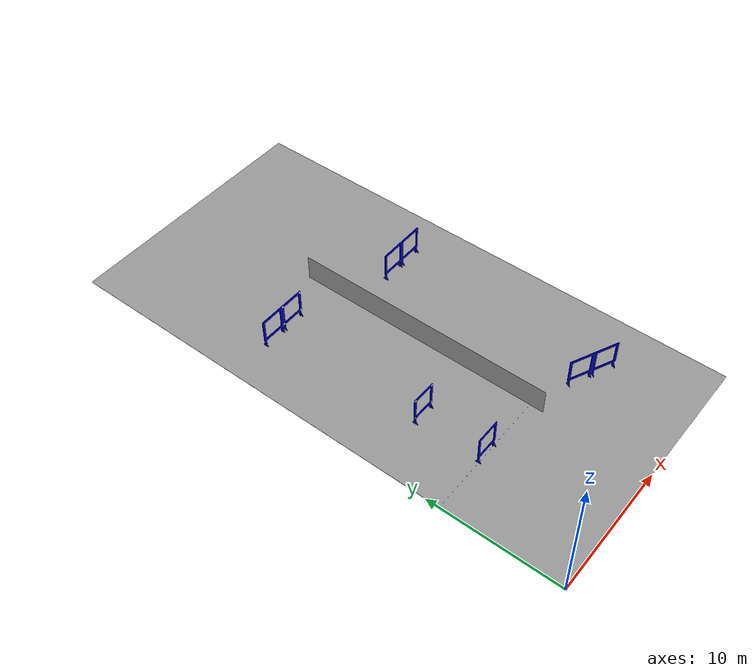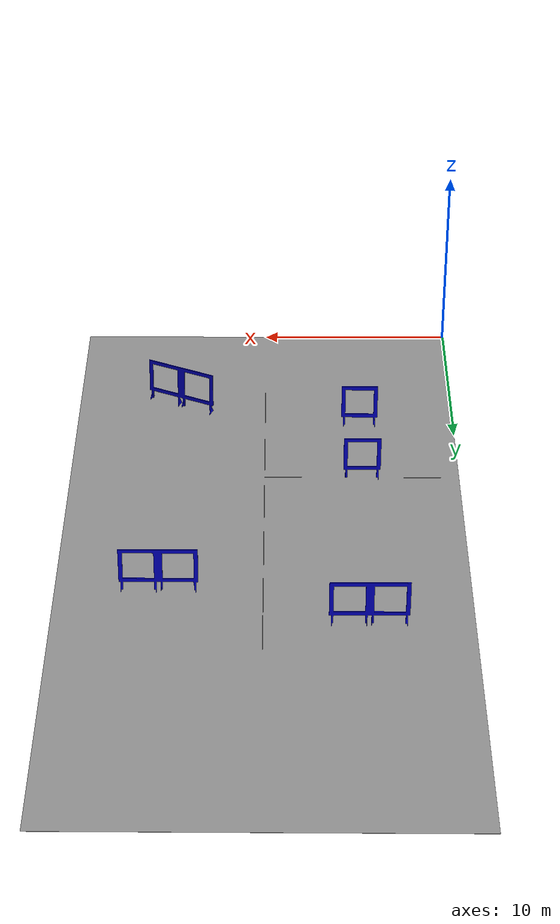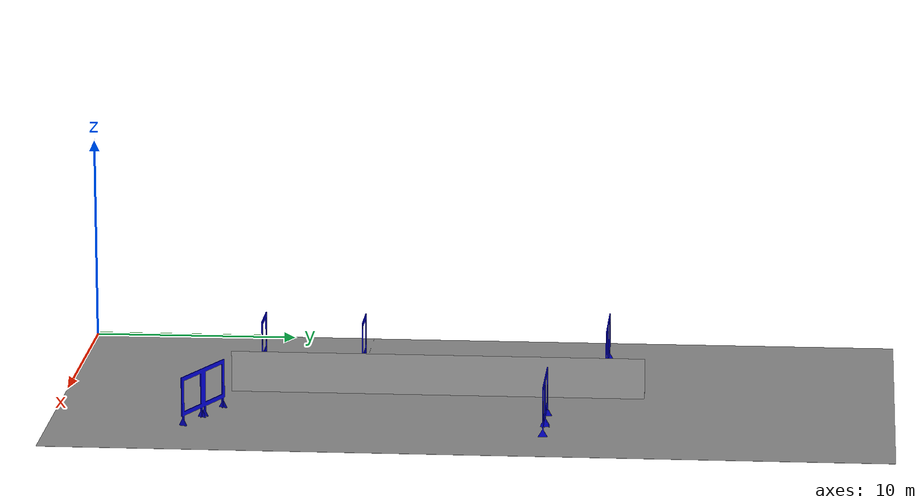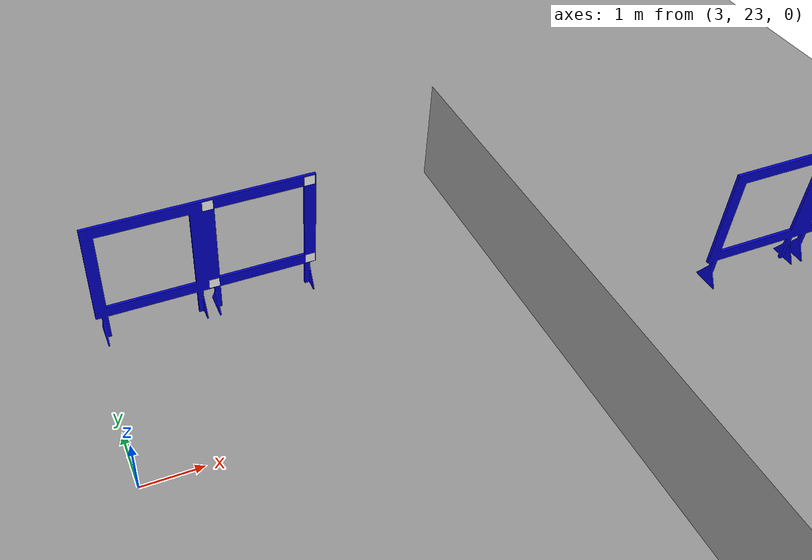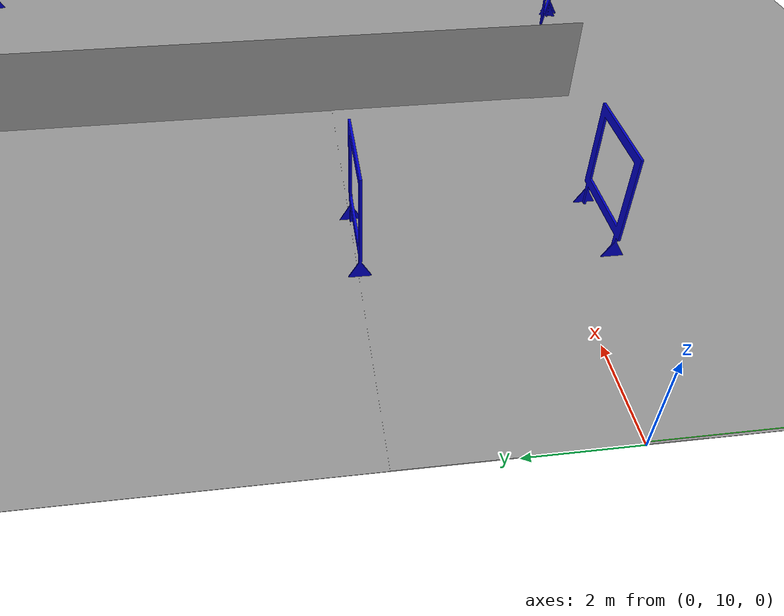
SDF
<sdf version="1.9">
 <world name="arena_d2">
  <physics name="1ms" type="ignore">
   <max_step_size>0.004</max_step_size>
   <real_time_factor>1.0</real_time_factor>
   <real_time_update_rate>250</real_time_update_rate>
  </physics>
  <plugin filename="gz-sim-physics-system" name="gz::sim::systems::Physics"/>
  <plugin filename="gz-sim-sensors-system" name="gz::sim::systems::Sensors">
   <render_engine>ogre2</render_engine>
  </plugin>
  <plugin filename="gz-sim-user-commands-system" name="gz::sim::systems::UserCommands"/>
  <plugin filename="gz-sim-scene-broadcaster-system" name="gz::sim::systems::SceneBroadcaster"/>
  <plugin filename="gz-sim-imu-system" name="gz::sim::systems::Imu"/>
  <plugin filename="gz-sim-navsat-system" name="gz::sim::systems::NavSat"/>
  <scene><ambient>1.0 1.0 1.0</ambient><background>0.8 0.8 0.8</background></scene>
  <spherical_coordinates>
   <latitude_deg>-35.363262</latitude_deg>
   <longitude_deg>149.165237</longitude_deg>
   <elevation>584</elevation>
   <heading_deg>0</heading_deg>
   <surface_model>EARTH_WGS84</surface_model>
  </spherical_coordinates>
  <light type="directional" name="sun">
   <pose>0 0 10 0 0 0</pose>
   <diffuse>0.8 0.8 0.8 1</diffuse>
   <specular>0.8 0.8 0.8 1</specular>
   <attenuation>
    <range>1000</range>
    <constant>0.9</constant>
    <linear>0.01</linear>
    <quadratic>0.001</quadratic>
   </attenuation>
   <direction>-0.5 0.1 -0.9</direction>
  </light>
  <model name="axes">
   <static>1</static>
   <link name="link">
    <visual name="r">
     <cast_shadows>0</cast_shadows>
     <pose>5 0 0.1 0 0 0</pose>
     <geometry><box><size>10 0.01 0.01</size></box></geometry>
     <material>
      <ambient>1 0 0 0.8</ambient>
      <diffuse>1 0 0 0.8</diffuse>
      <emissive>1 0 0 0.8</emissive>
      <specular>0.5 0.5 0.5 0.8</specular>
     </material>
    </visual>
    <visual name="g">
     <cast_shadows>0</cast_shadows>
     <pose>0 5 0.1 0 0 0</pose>
     <geometry><box><size>0.01 10 0.01</size></box></geometry>
     <material>
      <ambient>0 1 0 0.8</ambient>
      <diffuse>0 1 0 0.8</diffuse>
      <emissive>0 1 0 0.8</emissive>
      <specular>0.5 0.5 0.5 0.8</specular>
     </material>
    </visual>
    <visual name="b">
     <cast_shadows>0</cast_shadows>
     <pose>0 0 5.1 0 0 0</pose>
     <geometry><box><size>0.01 0.01 10</size></box></geometry>
     <material>
      <ambient>0 0 1 0.8</ambient>
      <diffuse>0 0 1 0.8</diffuse>
      <emissive>0 0 1 0.8</emissive>
      <specular>0.5 0.5 0.5 0.8</specular>
     </material>
    </visual>
    <sensor name="navsat_sensor" type="navsat"><always_on>1</always_on><update_rate>1</update_rate></sensor>
   </link>
  </model>
  <include><uri>model://arena_d2</uri><pose degrees="true">0 0 0.01 0 0 0</pose></include>
  <include><uri>model://gate_d2</uri><pose degrees="true">0 0 0.01 0 0 0</pose></include>
  <include>
   <name>Apriltag36_11_00000</name>
   <uri>model://Apriltag36_11_00000</uri>
   <pose>4.1596000000000002 13.949999999999999 0.61070000000000002 3.1321926535749083 1.5707926536359933 -1.5801926536095972</pose>
  </include>
  <include>
   <name>Apriltag36_11_00001</name>
   <uri>model://Apriltag36_11_00001</uri>
   <pose>5.8456254005432129 13.950200080871582 0.61243200302124023 -1.567442480108711 1.5700000026765395 0.0044305451421165071</pose>
  </include>
  <include>
   <name>Apriltag36_11_00002</name>
   <uri>model://Apriltag36_11_00002</uri>
   <pose>5.8388800621032715 13.948699951171875 2.2999057769775391 -1.6636114067854597 1.5707899806494316 -0.095307389243055721</pose>
  </include>
  <include>
   <name>Apriltag36_11_00003</name>
   <uri>model://Apriltag36_11_00003</uri>
   <pose>4.1497697830200195 13.949700355529785 2.3052799701690674 1.5714350183503445 -1.5650371883278238 -0.0032113585417588948</pose>
  </include>
  <include>
   <name>Apriltag36_11_00004</name>
   <uri>model://Apriltag36_11_00004</uri>
   <pose>5.0998000000000001 25.974599999999999 0.59970000000000001 -1.3479926536321718 1.5707926536662187 0.22369265355028395</pose>
  </include>
  <include>
   <name>Apriltag36_11_00005</name>
   <uri>model://Apriltag36_11_00005</uri>
   <pose>6.7988104820251465 25.968803405761719 0.59969997406005859 1.5666846825855703 1.5707899788477593 3.1363146954320733</pose>
  </include>
  <include>
   <name>Apriltag36_11_00006</name>
   <uri>model://Apriltag36_11_00006</uri>
   <pose>6.7919 25.974599999999999 2.2848999999999999 -0.0046926535424292237 1.5707926536662187 1.5660926536164108</pose>
  </include>
  <include>
   <name>Apriltag36_11_00007</name>
   <uri>model://Apriltag36_11_00007</uri>
   <pose>5.0998000000000001 25.974599999999999 2.2848999999999999 1.5563926535503383 1.5707926536057681 3.1372926535602579</pose>
  </include>
 </world>
</sdf>

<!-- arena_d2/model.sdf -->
<sdf version="1.9">
  <model name="arena_d2">
  <static>true</static>
    <link name="link">
      <inertial>
        <mass>5.0</mass>
        <inertia>
          <ixx>9.108e-05</ixx>
          <ixy>0</ixy>
          <ixz>0</ixz>
          <iyy>2.51e-06</iyy>
          <iyz>0</iyz>
          <izz>8.931e-05</izz>
        </inertia>
      </inertial>
      <visual name="visual">
        <pose>0 0 0 0 0 0</pose>
        <geometry>
          <mesh>
            <uri>model://arena_d2/meshes/arena_d2.stl</uri>
          </mesh>
        </geometry>
        <material>
            <ambient>0.4 0.4 0.4 1</ambient>
            <diffuse>0.6 0.6 0.6 1</diffuse>
            <specular>0.5 0.5 0.5 1</specular>
        </material>
      </visual>

      <collision name="collision">
        <geometry>
          <mesh>
            <uri>model://arena_d2/meshes/arena_d2.stl</uri>
          </mesh>
        </geometry>
      </collision>
    </link>
  </model>
</sdf>

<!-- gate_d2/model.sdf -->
<sdf version="1.9">
  <model name="gate_d2">
    <static>true</static>
    <link name="link">
      <inertial>
        <mass>5.0</mass>
        <inertia>
          <ixx>9.108e-05</ixx>
          <ixy>0</ixy>
          <ixz>0</ixz>
          <iyy>2.51e-06</iyy>
          <iyz>0</iyz>
          <izz>8.931e-05</izz>
        </inertia>
      </inertial>
      <visual name="visual">
        <pose>0 0 0 0 0 0</pose>
        <geometry>
          <mesh>
            <uri>model://gate_d2/meshes/gate_d2.stl</uri>
          </mesh>
        </geometry>
        <material>
            <ambient>0.0 0.0 0.5 1</ambient>
            <diffuse>0.0 0.0 0.8 1</diffuse>
            <specular>0.1 0.1 0.1 1</specular>
        </material>
      </visual>

      <collision name="collision">
        <geometry>
          <mesh>
            <uri>model://gate_d2/meshes/gate_d2.stl</uri>
          </mesh>
        </geometry>
      </collision>
    </link>
  </model>
</sdf>

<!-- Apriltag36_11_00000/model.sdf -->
<sdf version="1.9">
  <model name="tag36_11_00000">
    <static>true</static>
    <link name="link">
      <visual name="visual">
        <geometry>
          <box>
            <size>0.18 0.18 0.001</size>
          </box>
        </geometry>
        <material>
          <ambient>1 1 1 1</ambient>
          <diffuse>1 1 1 1</diffuse>
          <specular>0.5 0.5 0.5 1</specular>
          <pbr>
            <metal>
              <albedo_map>materials/textures/tag36_11_00000.png</albedo_map>
              <roughness>0.5</roughness>
              <metalness>0.0</metalness>
            </metal>
          </pbr>
        </material>
      </visual>
      <collision name="collision">
        <geometry>
          <box>
            <size>0.2 0.2 0.001</size>
          </box>
        </geometry>
      </collision>
    </link>
  </model>
</sdf>

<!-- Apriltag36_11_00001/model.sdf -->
<sdf version="1.9">
  <model name="tag36_11_00001">
    <static>true</static>
    <link name="link">
      <visual name="visual">
        <geometry>
          <box>
            <size>0.18 0.18 0.001</size>
          </box>
        </geometry>
        <material>
          <ambient>1 1 1 1</ambient>
          <diffuse>1 1 1 1</diffuse>
          <specular>0.5 0.5 0.5 1</specular>
          <pbr>
            <metal>
              <albedo_map>materials/textures/tag36_11_00001.png</albedo_map>
              <roughness>0.5</roughness>
              <metalness>0.0</metalness>
            </metal>
          </pbr>
        </material>
      </visual>
      <collision name="collision">
        <geometry>
          <box>
            <size>0.2 0.2 0.001</size>
          </box>
        </geometry>
      </collision>
    </link>
  </model>
</sdf>

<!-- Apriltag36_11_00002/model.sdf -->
<sdf version="1.9">
  <model name="tag36_11_00002">
    <static>true</static>
    <link name="link">
      <visual name="visual">
        <geometry>
          <box>
            <size>0.18 0.18 0.001</size>
          </box>
        </geometry>
        <material>
          <ambient>1 1 1 1</ambient>
          <diffuse>1 1 1 1</diffuse>
          <specular>0.5 0.5 0.5 1</specular>
          <pbr>
            <metal>
              <albedo_map>materials/textures/tag36_11_00002.png</albedo_map>
              <roughness>0.5</roughness>
              <metalness>0.0</metalness>
            </metal>
          </pbr>
        </material>
      </visual>
      <collision name="collision">
        <geometry>
          <box>
            <size>0.2 0.2 0.001</size>
          </box>
        </geometry>
      </collision>
    </link>
  </model>
</sdf>

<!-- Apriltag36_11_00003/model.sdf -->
<sdf version="1.9">
  <model name="tag36_11_00003">
    <static>true</static>
    <link name="link">
      <visual name="visual">
        <geometry>
          <box>
            <size>0.18 0.18 0.001</size>
          </box>
        </geometry>
        <material>
          <ambient>1 1 1 1</ambient>
          <diffuse>1 1 1 1</diffuse>
          <specular>0.5 0.5 0.5 1</specular>
          <pbr>
            <metal>
              <albedo_map>materials/textures/tag36_11_00003.png</albedo_map>
              <roughness>0.5</roughness>
              <metalness>0.0</metalness>
            </metal>
          </pbr>
        </material>
      </visual>
      <collision name="collision">
        <geometry>
          <box>
            <size>0.2 0.2 0.001</size>
          </box>
        </geometry>
      </collision>
    </link>
  </model>
</sdf>

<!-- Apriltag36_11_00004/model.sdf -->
<sdf version="1.9">
  <model name="tag36_11_00004">
    <static>true</static>
    <link name="link">
      <visual name="visual">
        <geometry>
          <box>
            <size>0.18 0.18 0.001</size>
          </box>
        </geometry>
        <material>
          <ambient>1 1 1 1</ambient>
          <diffuse>1 1 1 1</diffuse>
          <specular>0.5 0.5 0.5 1</specular>
          <pbr>
            <metal>
              <albedo_map>materials/textures/tag36_11_00004.png</albedo_map>
              <roughness>0.5</roughness>
              <metalness>0.0</metalness>
            </metal>
          </pbr>
        </material>
      </visual>
      <collision name="collision">
        <geometry>
          <box>
            <size>0.2 0.2 0.001</size>
          </box>
        </geometry>
      </collision>
    </link>
  </model>
</sdf>

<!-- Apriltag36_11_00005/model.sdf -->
<sdf version="1.9">
  <model name="tag36_11_00005">
    <static>true</static>
    <link name="link">
      <visual name="visual">
        <geometry>
          <box>
            <size>0.18 0.18 0.001</size>
          </box>
        </geometry>
        <material>
          <ambient>1 1 1 1</ambient>
          <diffuse>1 1 1 1</diffuse>
          <specular>0.5 0.5 0.5 1</specular>
          <pbr>
            <metal>
              <albedo_map>materials/textures/tag36_11_00005.png</albedo_map>
              <roughness>0.5</roughness>
              <metalness>0.0</metalness>
            </metal>
          </pbr>
        </material>
      </visual>
      <collision name="collision">
        <geometry>
          <box>
            <size>0.2 0.2 0.001</size>
          </box>
        </geometry>
      </collision>
    </link>
  </model>
</sdf>

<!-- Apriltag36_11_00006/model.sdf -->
<sdf version="1.9">
  <model name="tag36_11_00006">
    <static>true</static>
    <link name="link">
      <visual name="visual">
        <geometry>
          <box>
            <size>0.18 0.18 0.001</size>
          </box>
        </geometry>
        <material>
          <ambient>1 1 1 1</ambient>
          <diffuse>1 1 1 1</diffuse>
          <specular>0.5 0.5 0.5 1</specular>
          <pbr>
            <metal>
              <albedo_map>materials/textures/tag36_11_00006.png</albedo_map>
              <roughness>0.5</roughness>
              <metalness>0.0</metalness>
            </metal>
          </pbr>
        </material>
      </visual>
      <collision name="collision">
        <geometry>
          <box>
            <size>0.2 0.2 0.001</size>
          </box>
        </geometry>
      </collision>
    </link>
  </model>
</sdf>

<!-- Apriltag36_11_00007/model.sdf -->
<sdf version="1.9">
  <model name="tag36_11_00007">
    <static>true</static>
    <link name="link">
      <visual name="visual">
        <geometry>
          <box>
            <size>0.18 0.18 0.001</size>
          </box>
        </geometry>
        <material>
          <ambient>1 1 1 1</ambient>
          <diffuse>1 1 1 1</diffuse>
          <specular>0.5 0.5 0.5 1</specular>
          <pbr>
            <metal>
              <albedo_map>materials/textures/tag36_11_00007.png</albedo_map>
              <roughness>0.5</roughness>
              <metalness>0.0</metalness>
            </metal>
          </pbr>
        </material>
      </visual>
      <collision name="collision">
        <geometry>
          <box>
            <size>0.2 0.2 0.001</size>
          </box>
        </geometry>
      </collision>
    </link>
  </model>
</sdf>
